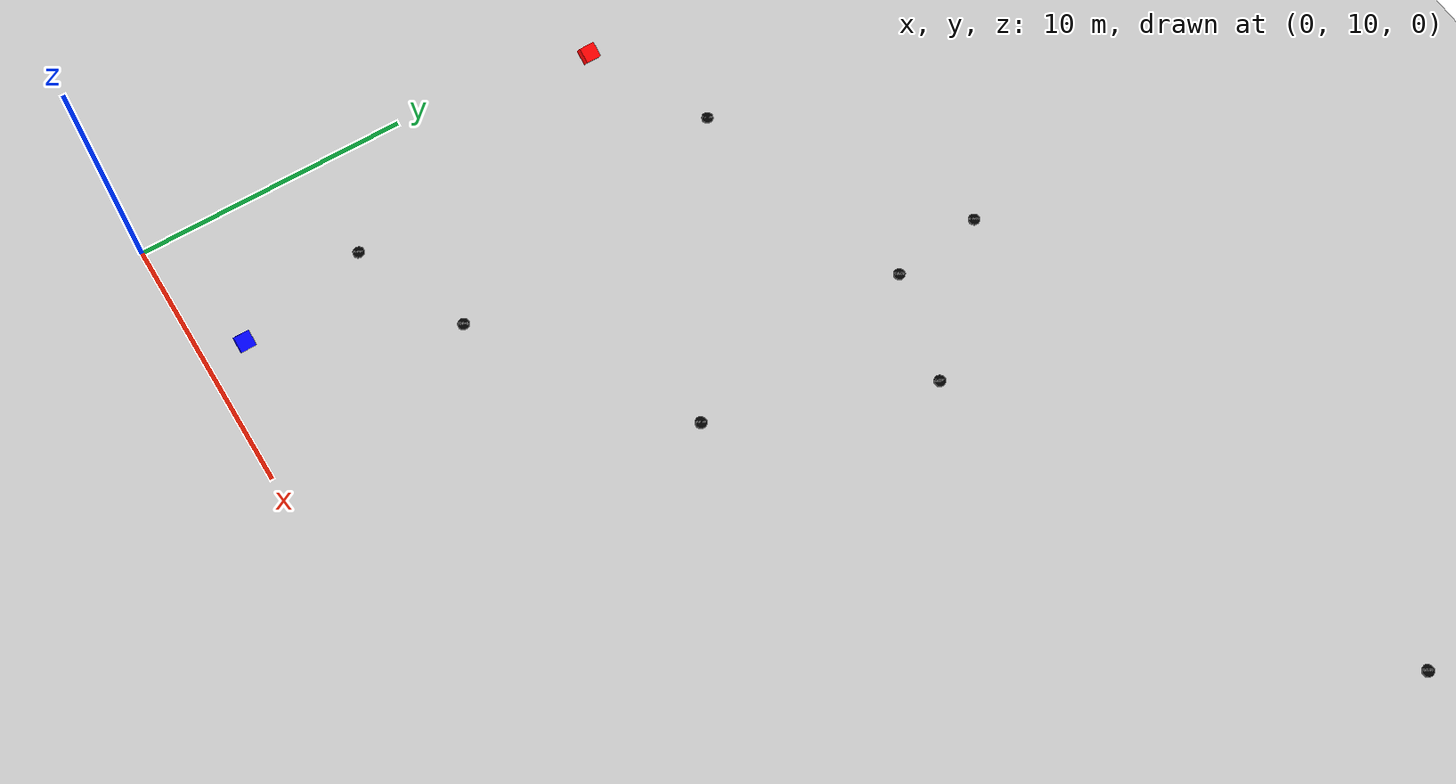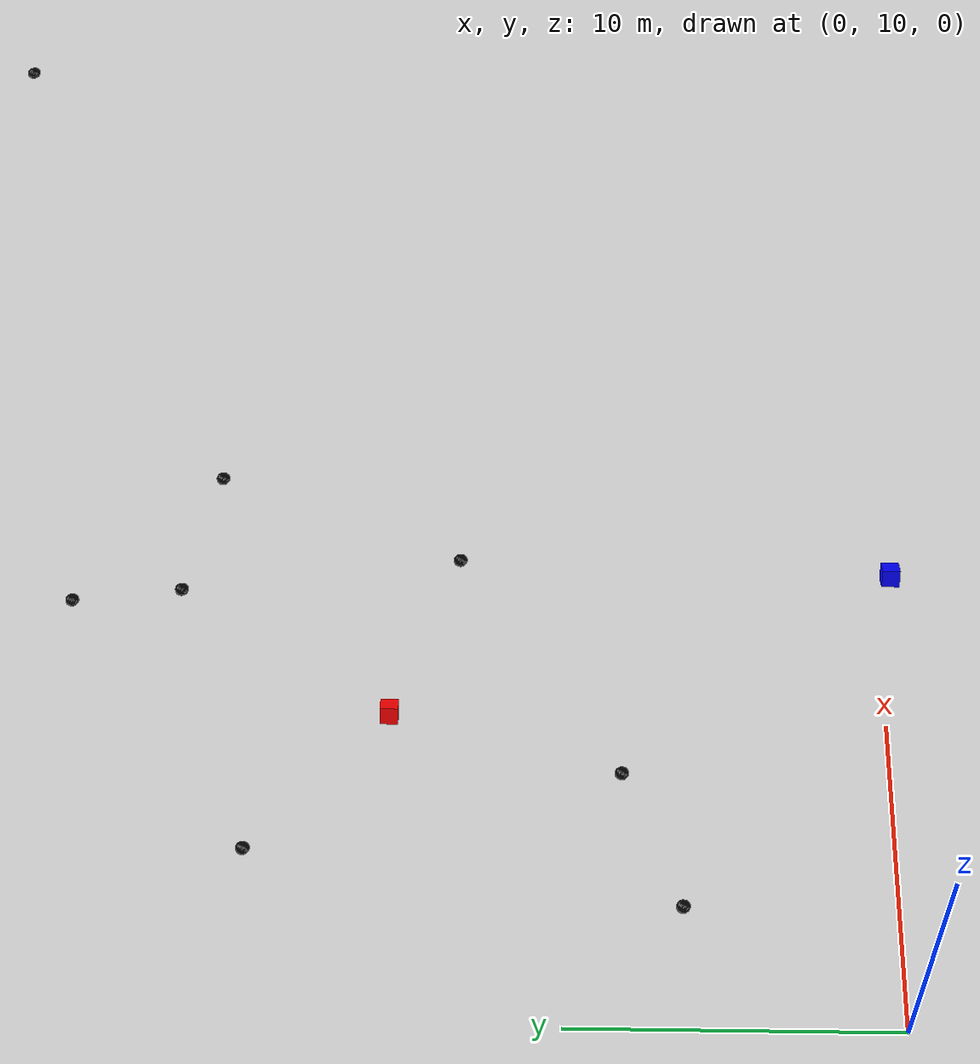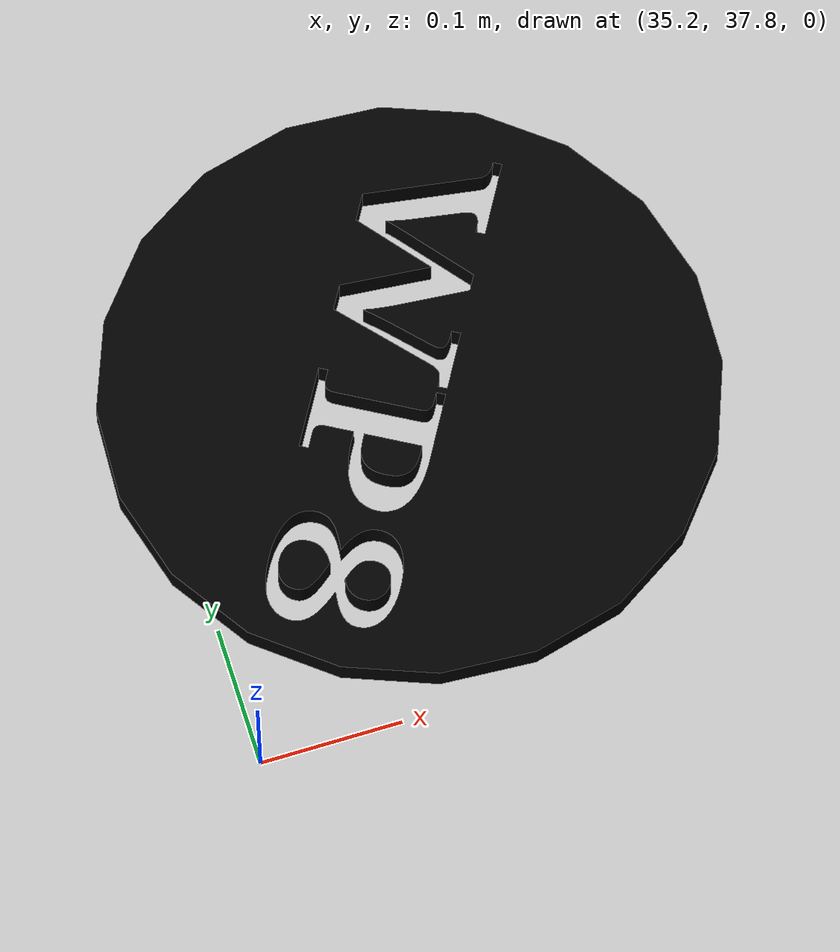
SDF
<sdf version="1.6">
 <world name="default">
  <light type="directional" name="sun">
   <cast_shadows>false</cast_shadows>
   <pose>50 0 50 0 0 0</pose>
   <diffuse>0.8 0.8 0.8 1</diffuse>
   <specular>0.2 0.2 0.2 1</specular>
   <attenuation>
    <range>1000</range>
    <constant>0.9</constant>
    <linear>0.01</linear>
    <quadratic>0.001</quadratic>
   </attenuation>
   <direction>-0.5 0.1 -0.9</direction>
  </light>
  <model name="ground_plane">
   <static>true</static>
   <link name="link">
    <collision name="collision">
     <geometry><plane><normal>0 0 1</normal><size>100 100</size></plane></geometry>
    </collision>
    <visual name="visual">
     <geometry><plane><normal>0 0 1</normal><size>100 100</size></plane></geometry>
     <material>
      <ambient>0.8 0.8 0.8 1</ambient>
      <diffuse>0.8 0.8 0.8 1</diffuse>
      <specular>0.8 0.8 0.8 1</specular>
      <specular>0.8 0.8 0.8 1</specular>
     </material>
    </visual>
   </link>
  </model>
  <physics name="1ms" type="ignored">
   <max_step_size>0.001</max_step_size>
   <real_time_factor>1.0</real_time_factor>
  </physics>
  <model name="top_down_camera">
   <static>true</static>
   <pose>6 25 8 0 2.0944 0</pose>
   <link name="link">
    <sensor name="camera1" type="camera">
     <camera>
      <horizontal_fov>1.047</horizontal_fov>
      <image><width>3840</width><height>2160</height><format>R8G8B8</format></image>
      <clip><near>0.1</near><far>100</far></clip>
      <save enabled="true"><path>/tmp/top_down_camera</path></save>
     </camera>
     <always_on>1</always_on>
     <update_rate>30</update_rate>
     <visualize>true</visualize>
     <plugin name="camera_controller" filename="libgazebo_ros_camera.so">
      <alwaysOn>true</alwaysOn>
      <updateRate>30</updateRate>
      <cameraName>camera1</cameraName>
      <imageTopicName>/top_down_camera/image_raw</imageTopicName>
      <cameraInfoTopicName>/top_down_camera/camera_info</cameraInfoTopicName>
      <frameName>camera1</frameName>
     </plugin>
    </sensor>
    <visual name="camera_visual">
     <geometry><box><size>0.5 0.5 0.5</size></box></geometry>
     <material>
      <ambient>1 0 0 1</ambient>
      <diffuse>1 0 0 1</diffuse>
      <specular>1 0 0 1</specular>
      <emissive>1 0 0 1</emissive>
     </material>
    </visual>
   </link>
  </model>
  <model name="side_camera">
   <static>true</static>
   <pose>10 11 9 0 2.0944 0</pose>
   <link name="link">
    <sensor name="camera2" type="camera">
     <camera>
      <horizontal_fov>1.047</horizontal_fov>
      <image><width>3840</width><height>2160</height><format>R8G8B8</format></image>
      <clip><near>0.1</near><far>100</far></clip>
      <save enabled="true"><path>/tmp/side_camera</path></save>
     </camera>
     <always_on>1</always_on>
     <update_rate>30</update_rate>
     <visualize>true</visualize>
     <plugin name="camera_controller" filename="libgazebo_ros_camera.so">
      <alwaysOn>true</alwaysOn>
      <updateRate>30</updateRate>
      <cameraName>camera2</cameraName>
      <imageTopicName>/side_camera/image_raw</imageTopicName>
      <cameraInfoTopicName>/side_camera/camera_info</cameraInfoTopicName>
      <frameName>camera2</frameName>
     </plugin>
    </sensor>
    <visual name="camera_visual">
     <geometry><box><size>0.5 0.5 0.5</size></box></geometry>
     <material>
      <ambient>0 0 1 1</ambient>
      <diffuse>0 0 1 1</diffuse>
      <specular>0 0 1 1</specular>
      <emissive>0 0 1 1</emissive>
     </material>
    </visual>
   </link>
  </model>
  <model name="wp1">
   <pose>4.1173 16.2684 -0.38 0 0 -2.094</pose>
   <static>true</static>
   <link name="link">
    <visual name="wp1_visual">
     <geometry><mesh><uri>model://dartec/meshes/wp1.stl</uri><scale>0.009 0.009 0.1</scale></mesh></geometry>
     <material>
      <ambient>0 0 0 1</ambient>
      <diffuse>0 0 0 1</diffuse>
      <specular>0.1 0.1 0.1 1</specular>
      <emissive>0 0 0 1</emissive>
     </material>
    </visual>
   </link>
  </model>
  <model name="wp2">
   <pose>8.5 18 -0.38 0 0 -2.094</pose>
   <static>true</static>
   <link name="link">
    <visual name="wp2_visual">
     <geometry><mesh><uri>model://dartec/meshes/wp2.stl</uri><scale>0.009 0.009 0.1</scale></mesh></geometry>
     <material>
      <ambient>0 0 0 1</ambient>
      <diffuse>0 0 0 1</diffuse>
      <specular>0.1 0.1 0.1 1</specular>
      <emissive>0 0 0 1</emissive>
     </material>
    </visual>
   </link>
  </model>
  <model name="wp3">
   <pose>5.8600 29.3587 -0.38 0 0 -2.094</pose>
   <static>true</static>
   <link name="link">
    <visual name="wp3_visual">
     <geometry><mesh><uri>model://dartec/meshes/wp3.stl</uri><scale>0.009 0.009 0.1</scale></mesh></geometry>
     <material>
      <ambient>0 0 0 1</ambient>
      <diffuse>0 0 0 1</diffuse>
      <specular>0.1 0.1 0.1 1</specular>
      <emissive>0 0 0 1</emissive>
     </material>
    </visual>
   </link>
  </model>
  <model name="wp4">
   <pose>14.3590 35.0567 -0.38 0 0 -2.094</pose>
   <static>true</static>
   <link name="link">
    <visual name="wp4_visual">
     <geometry><mesh><uri>model://dartec/meshes/wp4.stl</uri><scale>0.009 0.009 0.1</scale></mesh></geometry>
     <material>
      <ambient>0 0 0 1</ambient>
      <diffuse>0 0 0 1</diffuse>
      <specular>0.1 0.1 0.1 1</specular>
      <emissive>0 0 0 1</emissive>
     </material>
    </visual>
   </link>
  </model>
  <model name="wp5">
   <pose>14.7822 31.6502 -0.38 0 0 -2.094</pose>
   <static>true</static>
   <link name="link">
    <visual name="wp4_visual">
     <geometry><mesh><uri>model://dartec/meshes/wp5.stl</uri><scale>0.009 0.009 0.1</scale></mesh></geometry>
     <material>
      <ambient>0 0 0 1</ambient>
      <diffuse>0 0 0 1</diffuse>
      <specular>0.1 0.1 0.1 1</specular>
      <emissive>0 0 0 1</emissive>
     </material>
    </visual>
   </link>
  </model>
  <model name="wp6">
   <pose>15.9510 22.9266 -0.38 0 0 -2.094</pose>
   <static>true</static>
   <link name="link">
    <visual name="wp4_visual">
     <geometry><mesh><uri>model://dartec/meshes/wp6.stl</uri><scale>0.009 0.009 0.1</scale></mesh></geometry>
     <material>
      <ambient>0 0 0 1</ambient>
      <diffuse>0 0 0 1</diffuse>
      <specular>0.1 0.1 0.1 1</specular>
      <emissive>0 0 0 1</emissive>
     </material>
    </visual>
   </link>
  </model>
  <model name="wp7">
   <pose>18.9063 30.5430 -0.38 0 0 -2.094</pose>
   <static>true</static>
   <link name="link">
    <visual name="wp4_visual">
     <geometry><mesh><uri>model://dartec/meshes/wp7.stl</uri><scale>0.009 0.009 0.1</scale></mesh></geometry>
     <material>
      <ambient>0 0 0 1</ambient>
      <diffuse>0 0 0 1</diffuse>
      <specular>0.1 0.1 0.1 1</specular>
      <emissive>0 0 0 1</emissive>
     </material>
    </visual>
   </link>
  </model>
  <model name="wp8">
   <pose>35.5772 37.9257 -0.38 0 0 -2.094</pose>
   <static>true</static>
   <link name="link">
    <visual name="wp4_visual">
     <geometry><mesh><uri>model://dartec/meshes/wp8.stl</uri><scale>0.009 0.009 0.1</scale></mesh></geometry>
     <material>
      <ambient>0 0 0 1</ambient>
      <diffuse>0 0 0 1</diffuse>
      <specular>0.1 0.1 0.1 1</specular>
      <emissive>0 0 0 1</emissive>
     </material>
    </visual>
   </link>
  </model>
 </world>
</sdf>
